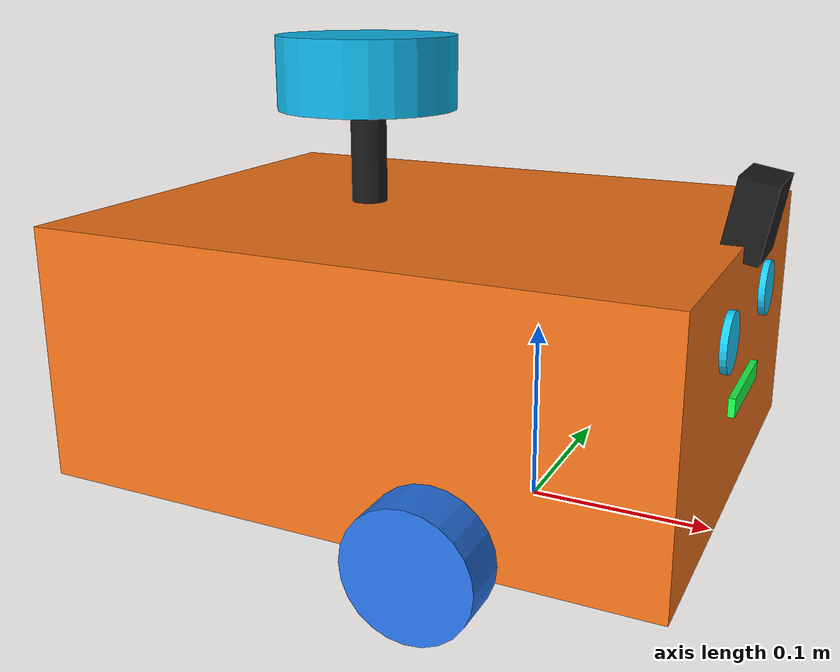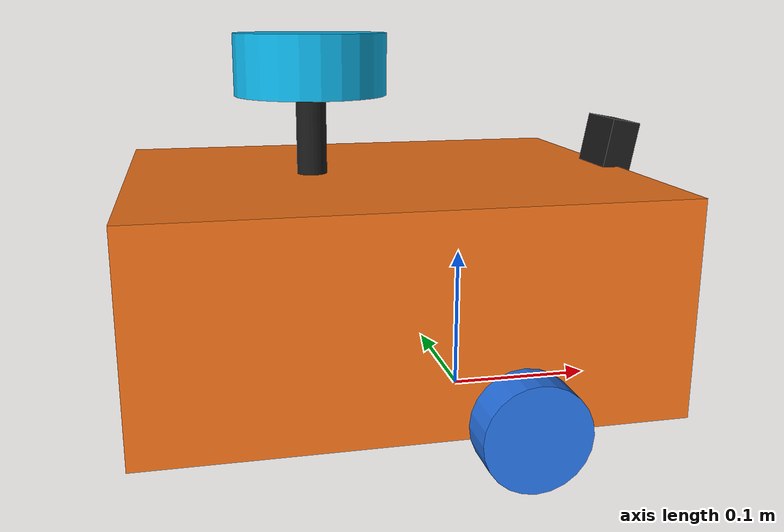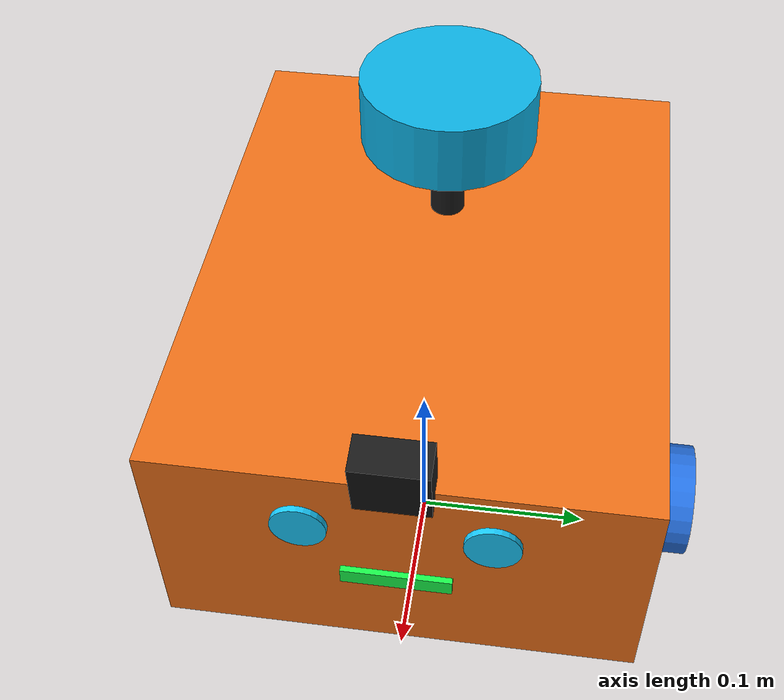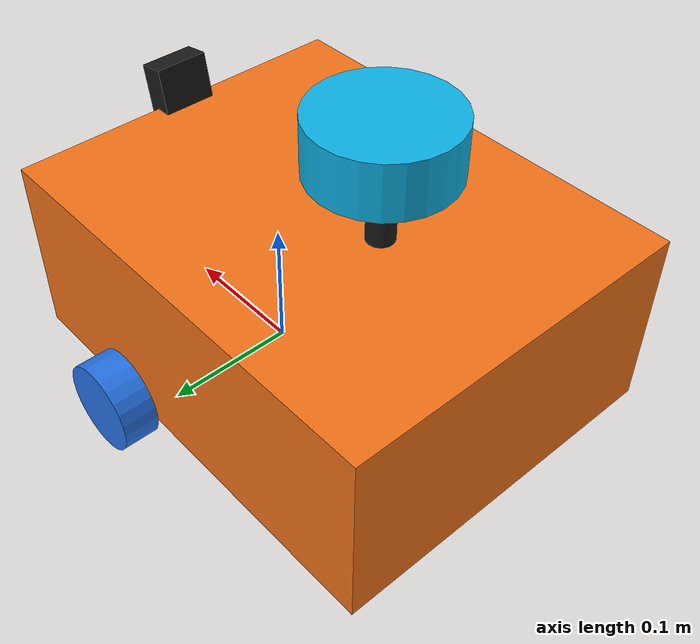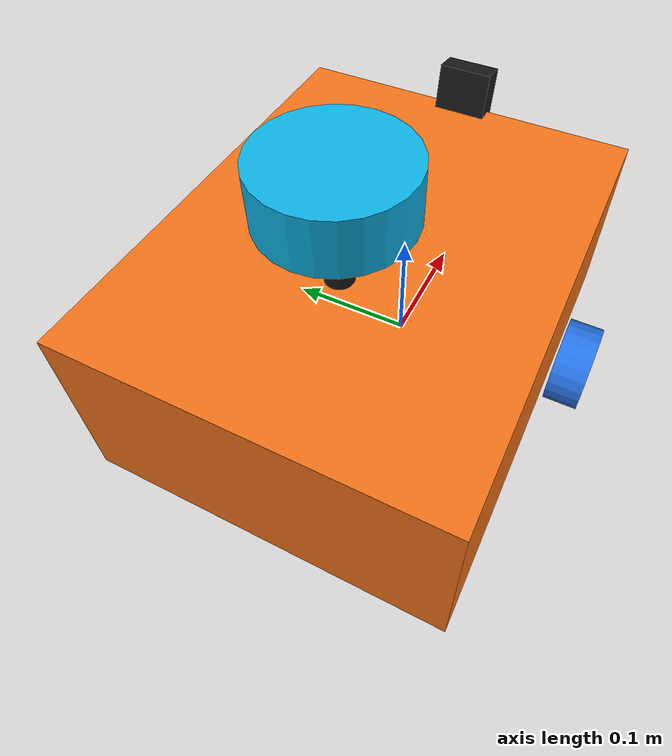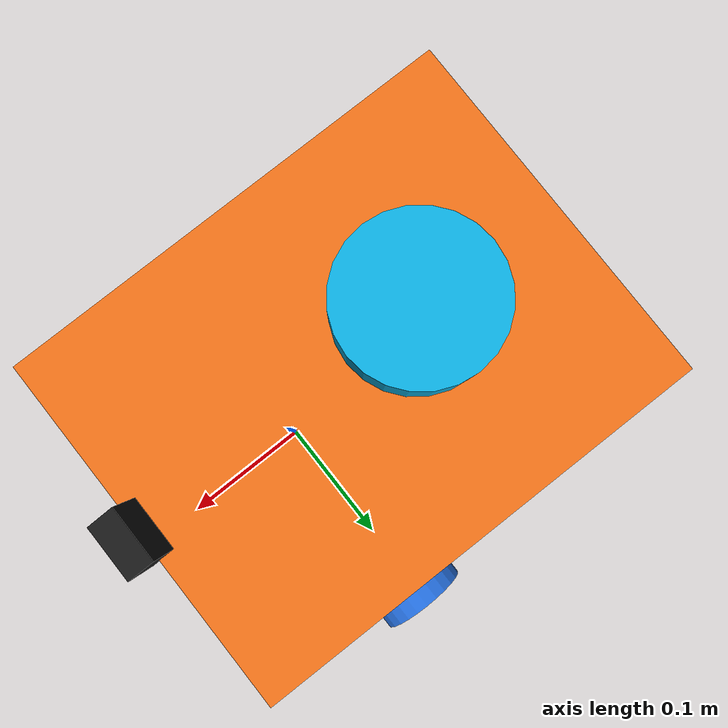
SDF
<?xml version="1.0" ?>
<sdf version="1.8">
  <model name="hc_robot">
    <pose>0 0 0.033 0 0 0</pose>

    <!-- BASE LINK / CHASSIS -->
    <link name="base_link">
      <inertial>
        <pose>-0.0585 0 0.059 0 0 0</pose>
        <mass>1.2</mass>
        <inertia>
          <ixx>0.01</ixx>
          <ixy>0</ixy>
          <ixz>0</ixz>
          <iyy>0.015</iyy>
          <iyz>0</iyz>
          <izz>0.02</izz>
        </inertia>
      </inertial>

      <!-- Chassis Visual (Orange Body) -->
      <visual name="chassis_visual">
        <pose>-0.0585 0 0.059 0 0 0</pose>
        <geometry>
          <box>
            <size>0.335 0.265 0.138</size>
          </box>
        </geometry>
        <material>
          <ambient>0.95 0.45 0.1 1</ambient>
          <diffuse>0.95 0.45 0.1 1</diffuse>
          <specular>0.5 0.5 0.5 1</specular>
        </material>
      </visual>

      <collision name="chassis_collision">
        <pose>-0.0585 0 0.059 0 0 0</pose>
        <geometry>
          <box>
            <size>0.335 0.265 0.138</size>
          </box>
        </geometry>
      </collision>

      <!-- Caster Wheel (White Low-Friction Ball) -->
      <visual name="caster_visual">
        <pose>-0.151 0 -0.023 0 0 0</pose>
        <geometry>
          <sphere>
            <radius>0.01</radius>
          </sphere>
        </geometry>
        <material>
          <ambient>0.9 0.9 0.9 1</ambient>
          <diffuse>0.9 0.9 0.9 1</diffuse>
        </material>
      </visual>

      <collision name="caster_collision">
        <pose>-0.151 0 -0.023 0 0 0</pose>
        <geometry>
          <sphere>
            <radius>0.01</radius>
          </sphere>
        </geometry>
        <surface>
          <friction>
            <ode>
              <mu>0.001</mu>
              <mu2>0.001</mu2>
            </ode>
          </friction>
        </surface>
      </collision>

      <!-- LiDAR Sensor Stand & Puck -->
      <visual name="lidar_stand">
        <pose>-0.104 0 0.15 0 0 0</pose>
        <geometry>
          <cylinder>
            <radius>0.01</radius>
            <length>0.1</length>
          </cylinder>
        </geometry>
        <material>
          <ambient>0.1 0.1 0.1 1</ambient>
          <diffuse>0.1 0.1 0.1 1</diffuse>
        </material>
      </visual>

      <visual name="lidar_puck">
        <pose>-0.104 0 0.20 0 0 0</pose>
        <geometry>
          <cylinder>
            <radius>0.05</radius>
            <length>0.04</length>
          </cylinder>
        </geometry>
        <material>
          <ambient>0.05 0.7 0.9 1</ambient>
          <diffuse>0.05 0.7 0.9 1</diffuse>
        </material>
      </visual>

      <collision name="lidar_collision">
        <pose>-0.104 0 0.20 0 0 0</pose>
        <geometry>
          <cylinder>
            <radius>0.05</radius>
            <length>0.04</length>
          </cylinder>
        </geometry>
      </collision>

      <!-- Camera Mount -->
      <visual name="camera_visual">
        <pose>0.11 0 0.14 0 0.18 0</pose>
        <geometry>
          <box>
            <size>0.02 0.04 0.04</size>
          </box>
        </geometry>
        <material>
          <ambient>0.1 0.1 0.1 1</ambient>
          <diffuse>0.1 0.1 0.1 1</diffuse>
        </material>
      </visual>

      <!-- Robot Eyes (Display Face) -->
      <visual name="face_eye_left">
        <pose>0.11 0.05 0.09 0 1.5708 0</pose>
        <geometry>
          <cylinder>
            <radius>0.015</radius>
            <length>0.005</length>
          </cylinder>
        </geometry>
        <material>
          <ambient>0.1 0.8 1.0 1</ambient>
          <diffuse>0.1 0.8 1.0 1</diffuse>
          <emissive>0.1 0.8 1.0 1</emissive>
        </material>
      </visual>

      <visual name="face_eye_right">
        <pose>0.11 -0.05 0.09 0 1.5708 0</pose>
        <geometry>
          <cylinder>
            <radius>0.015</radius>
            <length>0.005</length>
          </cylinder>
        </geometry>
        <material>
          <ambient>0.1 0.8 1.0 1</ambient>
          <diffuse>0.1 0.8 1.0 1</diffuse>
          <emissive>0.1 0.8 1.0 1</emissive>
        </material>
      </visual>

      <!-- Robot Mouth / LED Screen Indicator -->
      <visual name="face_mouth">
        <pose>0.11 0 0.05 0 1.5708 0</pose>
        <geometry>
          <box>
            <size>0.01 0.06 0.005</size>
          </box>
        </geometry>
        <material>
          <ambient>0.1 1.0 0.3 1</ambient>
          <diffuse>0.1 1.0 0.3 1</diffuse>
          <emissive>0.1 1.0 0.3 1</emissive>
        </material>
      </visual>

      <!-- LiDAR Sensor Plugin (Visual 360 Rays Enabled, 8m Range Capped to Room) -->
      <sensor name="laser" type="gpu_lidar">
        <pose>-0.104 0 0.20 0 0 0</pose>
        <visualize>true</visualize>
        <update_rate>15</update_rate>
        <topic>/scan</topic>
        <gz_frame_id>laser_frame</gz_frame_id>
        <lidar>
          <scan>
            <horizontal>
              <samples>360</samples>
              <resolution>1</resolution>
              <min_angle>-3.14159</min_angle>
              <max_angle>3.14159</max_angle>
            </horizontal>
            <vertical>
              <samples>1</samples>
              <resolution>1</resolution>
              <min_angle>0.0</min_angle>
              <max_angle>0.0</max_angle>
            </vertical>
          </scan>
          <range>
            <min>0.12</min>
            <max>8.0</max>
            <resolution>0.01</resolution>
          </range>
        </lidar>
      </sensor>

      <!-- Camera Sensor Plugin (Matched to camera.xacro pose and optical frame) -->
      <sensor name="camera" type="camera">
        <pose>0.11 0 0.14 0 0.18 0</pose>
        <visualize>false</visualize>
        <update_rate>15</update_rate>
        <topic>/camera/image_raw</topic>
        <gz_frame_id>camera_link_optical</gz_frame_id>
        <camera>
          <camera_info_topic>/camera/camera_info</camera_info_topic>
          <horizontal_fov>1.1</horizontal_fov>
          <image>
            <format>R8G8B8</format>
            <width>640</width>
            <height>480</height>
          </image>
          <clip>
            <near>0.05</near>
            <far>10.0</far>
          </clip>
        </camera>
      </sensor>
    </link>

    <!-- LEFT WHEEL -->
    <link name="left_wheel">
      <pose>0 0.1485 0 -1.5708 0 0</pose>
      <inertial>
        <mass>0.08</mass>
        <inertia>
          <ixx>0.0001</ixx>
          <ixy>0</ixy>
          <ixz>0</ixz>
          <iyy>0.0001</iyy>
          <iyz>0</iyz>
          <izz>0.0001</izz>
        </inertia>
      </inertial>
      <visual name="visual">
        <geometry>
          <cylinder>
            <radius>0.033</radius>
            <length>0.026</length>
          </cylinder>
        </geometry>
        <material>
          <ambient>0.15 0.45 0.9 1</ambient>
          <diffuse>0.15 0.45 0.9 1</diffuse>
        </material>
      </visual>
      <collision name="collision">
        <geometry>
          <sphere>
            <radius>0.033</radius>
          </sphere>
        </geometry>
        <surface>
          <friction>
            <ode>
              <mu>1.0</mu>
              <mu2>1.0</mu2>
            </ode>
          </friction>
        </surface>
      </collision>
    </link>

    <!-- RIGHT WHEEL -->
    <link name="right_wheel">
      <pose>0 -0.1485 0 1.5708 0 0</pose>
      <inertial>
        <mass>0.08</mass>
        <inertia>
          <ixx>0.0001</ixx>
          <ixy>0</ixy>
          <ixz>0</ixz>
          <iyy>0.0001</iyy>
          <iyz>0</iyz>
          <izz>0.0001</izz>
        </inertia>
      </inertial>
      <visual name="visual">
        <geometry>
          <cylinder>
            <radius>0.033</radius>
            <length>0.026</length>
          </cylinder>
        </geometry>
        <material>
          <ambient>0.15 0.45 0.9 1</ambient>
          <diffuse>0.15 0.45 0.9 1</diffuse>
        </material>
      </visual>
      <collision name="collision">
        <geometry>
          <sphere>
            <radius>0.033</radius>
          </sphere>
        </geometry>
        <surface>
          <friction>
            <ode>
              <mu>1.0</mu>
              <mu2>1.0</mu2>
            </ode>
          </friction>
        </surface>
      </collision>
    </link>

    <!-- REVOLUTE JOINTS FOR WHEELS (Axle rotation around horizontal Y-axis of base_link) -->
    <joint name="left_wheel_joint" type="revolute">
      <parent>base_link</parent>
      <child>left_wheel</child>
      <axis>
        <xyz expressed_in="base_link">0 1 0</xyz>
        <limit>
          <lower>-1e16</lower>
          <upper>1e16</upper>
        </limit>
      </axis>
    </joint>

    <joint name="right_wheel_joint" type="revolute">
      <parent>base_link</parent>
      <child>right_wheel</child>
      <axis>
        <xyz expressed_in="base_link">0 1 0</xyz>
        <limit>
          <lower>-1e16</lower>
          <upper>1e16</upper>
        </limit>
      </axis>
    </joint>

    <!-- DIFF DRIVE SYSTEM PLUGIN (GAZEBO HARMONIC) -->
    <plugin filename="gz-sim-diff-drive-system" name="gz::sim::systems::DiffDrive">
      <left_joint>left_wheel_joint</left_joint>
      <right_joint>right_wheel_joint</right_joint>
      <wheel_separation>0.297</wheel_separation>
      <wheel_radius>0.033</wheel_radius>
      <topic>cmd_vel</topic>
      <odom_topic>odom</odom_topic>
      <tf_topic>tf</tf_topic>
      <frame_id>odom</frame_id>
      <child_frame_id>base_link</child_frame_id>
    </plugin>
  </model>
</sdf>
